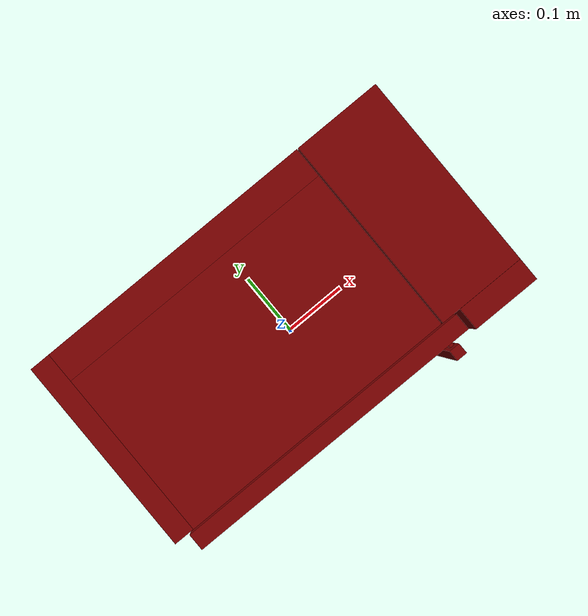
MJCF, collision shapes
<?xml version='1.0' encoding='UTF-8'?>
<mujoco model="model">
  <option timestep="0.002" gravity="0.0 0.0 -9.81"/>
  <compiler angle="radian"/>
  <asset>
    <mesh file="visuals/door.obj" name="door_vis"/>
    <mesh file="visuals/door_Clear.obj" name="door_Clear_vis"/>
    <mesh file="visuals/Body001.obj" name="Body001_vis"/>
    <mesh file="visuals/Disc001.obj" name="Disc001_vis"/>
    <texture file="visuals/T_BC001.png" name="Body001_material" type="2d"/>
    <material name="Body001_material" rgba="1 1 1 1.0" texture="Body001_material" shininess="0.1" specular="3"/>
    <texture file="visuals/T_BC001.png" name="door_material" type="2d"/>
    <material name="door_material" rgba="1 1 1 1.0" texture="door_material" shininess="0.1" specular="3"/>
    <material name="door_Clear_material" rgba="0.011301128193736076 0.011301128193736076 0.011301128193736076 0.800000011920929" shininess="0.4472135901451111" specular="0.3103448502657381"/>
    <texture file="visuals/T_BC001.png" name="Disc001_material" type="2d"/>
    <material name="Disc001_material" rgba="1 1 1 1.0" texture="Disc001_material" shininess="0.1" specular="3"/>
  </asset>
  <default>
    <default class="visual">
      <geom conaffinity="0" contype="0" group="1" type="mesh"/>
    </default>
    <default class="collision">
      <geom group="0" rgba="0.5 0 0 0.5"/>
    </default>
    <default class="spawn">
      <geom group="0" rgba="1 1 1 0.5" contype="0" conaffinity="0"/>
      <site group="0" rgba="1 1 1 0.5"/>
    </default>
    <default class="region">
      <geom group="1" conaffinity="0" contype="0" rgba="0 1 0 0"/>
    </default>
  </default>
  <worldbody>
    <body>
      <body name="object">
        <geom class="collision" type="cylinder" pos="-0.04348598 0.01520408 -0.13100834" size="0.10628457367420197 0.000135554262669757" quat="1.0 0.0 0.0 0.0" name="tray" rgba="0 1 0 0.5"/>
        <geom class="collision" type="box" pos="0.20241794 -0.14554180 -0.08371682" size="0.012537810951471329 0.0004041246138513088 0.006864568218588829" quat="1.0 0.0 0.0 0.0" name="start_button" rgba="0.0 0.5 0 0.5"/>
        <geom class="collision" type="box" pos="0.25497472 -0.14554180 -0.08371682" size="0.012537814676761627 0.00040412473026663065 0.006864570081233978" quat="1.0 0.0 0.0 0.0" name="stop_button" rgba="0.0 0.5 0 0.5"/>
        <geom mesh="Body001_vis" type="mesh" solimp="0.998 0.998 0.001" solref="0.001 1" friction="0.95 0.3 0.1" class="visual" material="Body001_material"/>
        <geom class="collision" type="box" pos="0.21649738 0.03050258 0.00004315" size="0.06265367567539215 0.1416064202785492 0.16526491940021515" quat="1.0 0.0 0.0 0.0"/>
        <geom class="collision" type="box" pos="-0.26468325 0.03067182 0.00004315" size="0.014467480592429638 0.14143703877925873 0.1652648001909256" quat="1.0 0.0 0.0 0.0"/>
        <geom class="collision" type="box" pos="-0.05514683 0.15068770 0.00004315" size="0.2068668007850647 0.02142001874744892 0.16526465117931366" quat="1.0 0.0 0.0 0.0"/>
        <geom class="collision" type="box" pos="-0.05514683 0.00935087 0.15323952" size="0.20686666667461395 0.12015147507190704 0.01206729281693697" quat="1.0 0.0 0.0 0.0"/>
        <geom class="collision" type="box" pos="-0.04924859 0.00935087 -0.15200062" size="0.20096829533576965 0.1201513409614563 0.011755642481148243" quat="1.0 0.0 0.0 0.0"/>
        <geom class="collision" type="box" pos="0.23016703 -0.12747847 0.00004316" size="0.048983484506607056 0.016216371208429337 0.16526424884796143" quat="1.0 0.0 0.0 0.0"/>
        <body name="door">
          <joint axis="0.0 0.0 1.0" pos="-0.25777912 -0.12629458 -0.00000001" limited="true" name="microjoint" range="-1.5707963267948966 0.0" type="hinge" damping="1" frictionloss="1" armature=".01" stiffness="0.05"/>
          <geom mesh="door_vis" type="mesh" solimp="0.998 0.998 0.001" solref="0.001 1" friction="0.95 0.3 0.1" class="visual" material="door_material"/>
          <geom class="collision" type="box" pos="-0.04237121 -0.12561148 -0.00035920" size="0.21637016534805298 0.012115349993109703 0.1641855388879776" quat="1.0 0.0 0.0 0.0" name="door_main"/>
          <geom class="collision" type="box" pos="0.15579881 -0.16427592 0.00234319" size="0.0081925755366683 0.0081925755366683 0.10853887349367142" quat="1.0 0.0 0.0 0.0" name="door_handle_main"/>
          <geom class="collision" type="cylinder" pos="0.15576497 -0.14634649 0.10170730" size="0.004123391583561897 0.007957934401929379" quat="0.7071068286895752 0.7071067690849304 0.0 0.0"/>
          <geom class="collision" type="cylinder" pos="0.15576497 -0.14634649 -0.09420315" size="0.004123391583561897 0.007957934401929379" quat="0.7071068286895752 0.7071067690849304 0.0 0.0"/>
          <geom class="collision" type="box" pos="-0.04768638 -0.13198438 -0.00024957" size="0.16644500195980072 0.0008122630533762276 0.10923850536346436" quat="1.0 0.0 0.0 0.0"/>
          <body name="door_Clear">
            <geom mesh="door_Clear_vis" type="mesh" solimp="0.998 0.998 0.001" solref="0.001 1" friction="0.95 0.3 0.1" class="visual" material="door_Clear_material"/>
            <geom class="collision" type="box" pos="-0.04768638 -0.13198438 -0.00024957" size="0.16644500195980072 0.0008122630533762276 0.10923850536346436" quat="1.0 0.0 0.0 0.0"/>
          </body>
        </body>
        <body name="Disc001">
          <joint axis="0.0 0.0 1.0" pos="-0.04348598 0.01520408 -0.11308107" limited="false" name="Disc001_joint" range="0 360" type="hinge" damping="1" frictionloss="1" armature=".01" stiffness="0.05"/>
          <geom mesh="Disc001_vis" type="mesh" solimp="0.998 0.998 0.001" solref="0.001 1" friction="0.95 0.3 0.1" class="visual" material="Disc001_material"/>
          <geom class="collision" type="cylinder" pos="-0.04348598 0.01520408 -0.13240814" size="0.10628457367420197 0.0011697333538904786" quat="1.0 0.0 0.0 0.0"/>
        </body>
        <geom class="region" name="reg_int" type="box" pos="-0.048678045 0.010509134999999996 0.002274170000000006" size="0.196522495 0.114017025 0.1341469"/>
        <geom class="region" name="reg_main" type="box" pos="-1.4999999992104662e-08 0.01373400000000001 0.0" size="0.280150335 0.15937358000000001 0.16630664"/>
      <geom class="region" name="reg_tray" type="cylinder" pos="-0.04348598 0.01520408 0.0027741421313348946" size="0.10628457367420197 0.13264692786866514"/></body>
    </body>
  </worldbody>
  <actuator>
    <motor name="microjoint_actuator" joint="microjoint" gear="10"/>
    <motor name="Disc001_joint_actuator" joint="Disc001_joint" gear="10"/>
  </actuator>
</mujoco>
